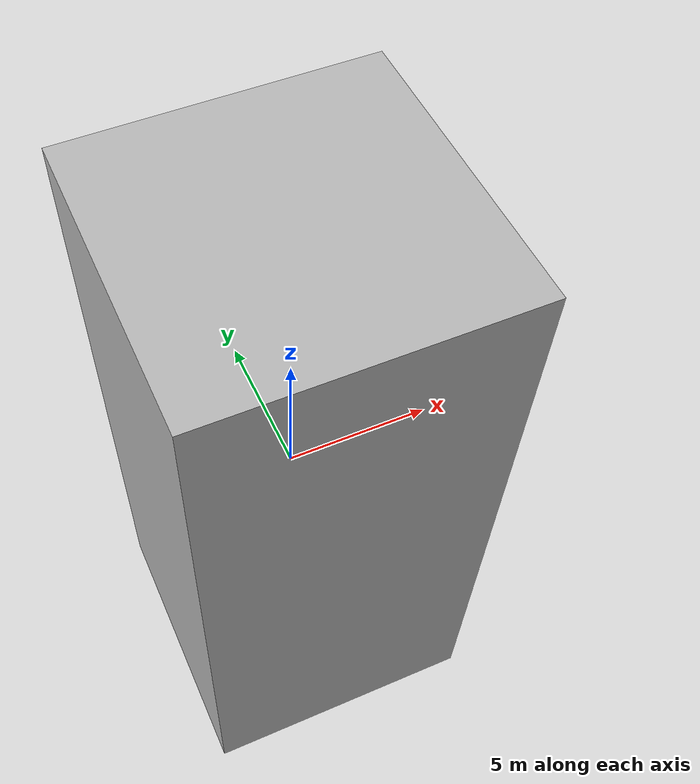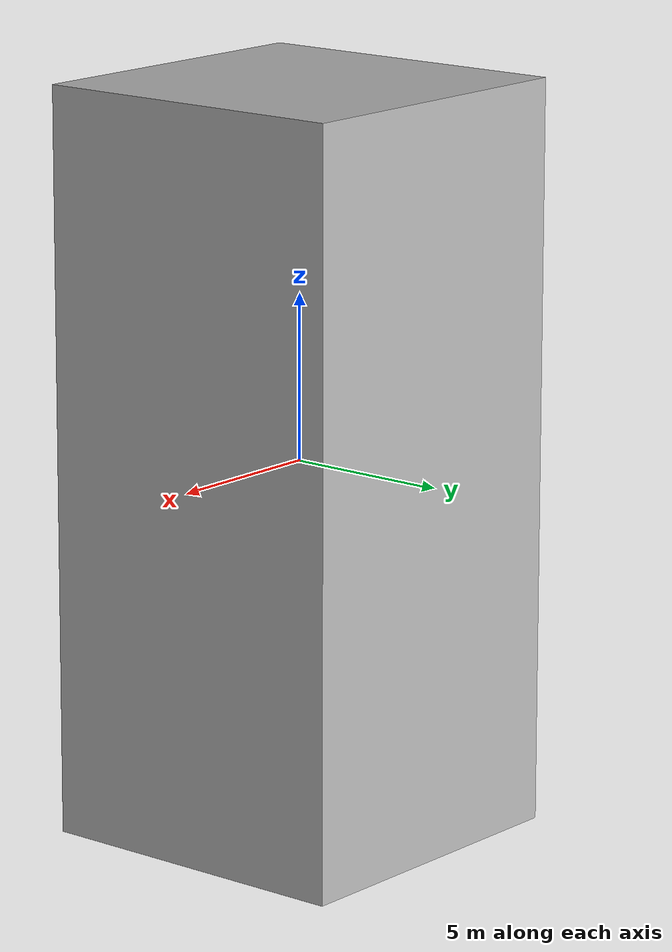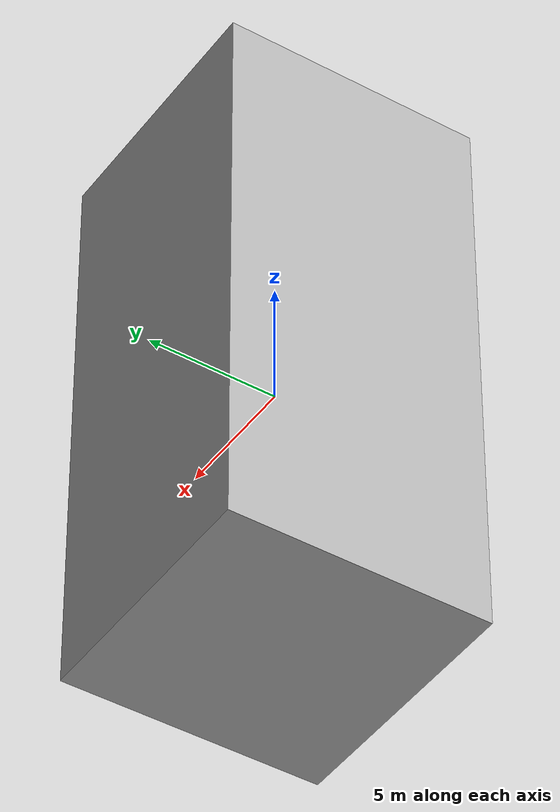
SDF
<?xml version="1.0" ?>
<sdf version="1.5">
    <model name='unit_box'>
      <static>1</static>
      <pose frame=''>0 0 0 0 0 0</pose>
      <link name='link'>
        <inertial>
          <mass>1</mass>
          <inertia>
            <ixx>0.166667</ixx>
            <ixy>0</ixy>
            <ixz>0</ixz>
            <iyy>0.166667</iyy>
            <iyz>0</iyz>
            <izz>0.166667</izz>
          </inertia>
          <pose frame=''>0 0 0 0 0 0</pose>
        </inertial>
        <collision name='collision'>
          <geometry>
            <box>
              <size>10 10 22.4</size>
            </box>
          </geometry>
          <max_contacts>10</max_contacts>
          <surface>
            <contact>
              <ode/>
            </contact>
            <bounce/>
            <friction>
              <torsional>
                <ode/>
              </torsional>
              <ode/>
            </friction>
          </surface>
        </collision>
        <visual name='visual'>
          <geometry>
            <box>
              <size>10 10 22.4</size>
            </box>
          </geometry>
            <material>
                <script>
                    <name>Wall2</name>
                    <uri>model://tall_pillar/scripts/repeated.material</uri>
                </script>
            </material>
        </visual>
        <self_collide>0</self_collide>
        <enable_wind>0</enable_wind>
        <kinematic>0</kinematic>
      </link>
    </model>
</sdf>
